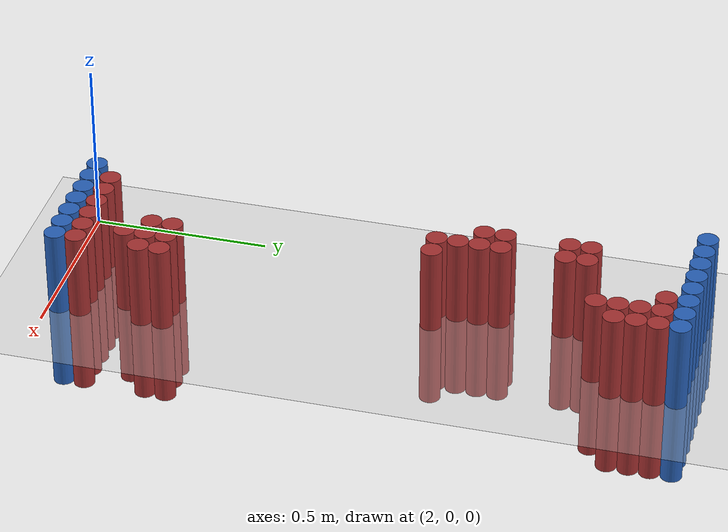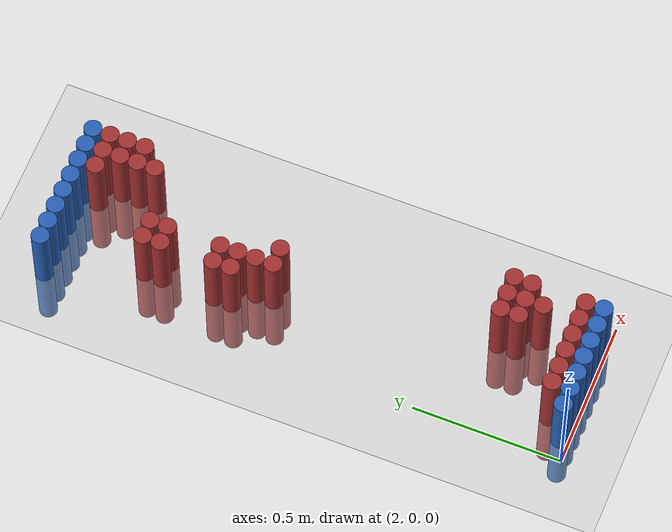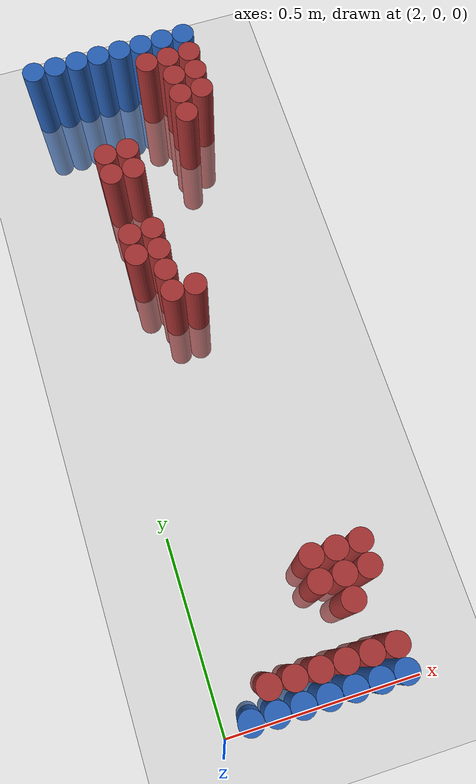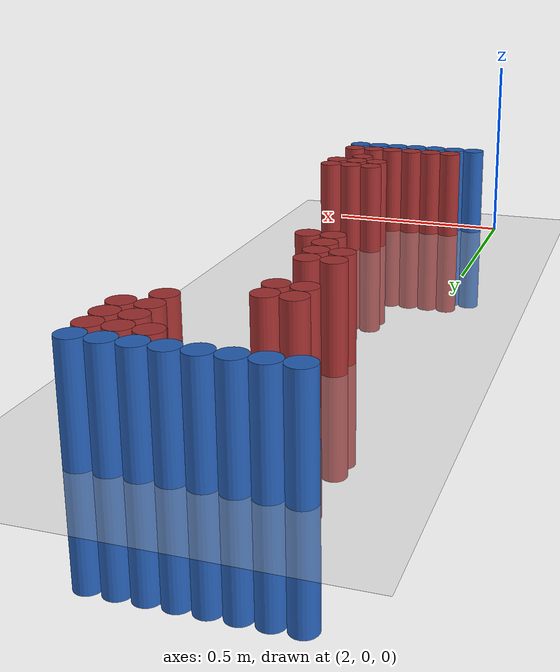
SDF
<sdf version="1.6">
 <world name="default">
  <model name="ground_plane">
   <static>1</static>
   <link name="link">
    <collision name="collision">
     <geometry><plane><normal>0 0 1</normal><size>100 100</size></plane></geometry>
     <surface><friction><ode><mu>100</mu><mu2>50</mu2></ode></friction></surface>
    </collision>
    <visual name="visual">
     <cast_shadows>0</cast_shadows>
     <geometry><plane><normal>0 0 1</normal><size>100 100</size></plane></geometry>
     <material>
      <script><uri>file://media/materials/scripts/gazebo.material</uri><name>Gazebo/Grey</name></script>
     </material>
    </visual>
   </link>
  </model>
  <model name="unit_cylinder_94">
   <static>1</static>
   <pose>2.010000 1.770000 0.000000 0.000000 0.000000 0.000000</pose>
   <link name="link">
    <inertial>
     <mass>1</mass>
     <inertia><ixx>0.145833</ixx><ixy>0</ixy><ixz>0</ixz><iyy>0.145833</iyy><iyz>0</iyz><izz>0.125</izz></inertia>
    </inertial>
    <collision name="collision">
     <geometry><cylinder><radius>0.030000</radius><length>0.5</length></cylinder></geometry>
    </collision>
    <visual name="visual">
     <geometry><cylinder><radius>0.030000</radius><length>0.5</length></cylinder></geometry>
     <material>
      <ambient>0.152000 0.379000 0.720000 1</ambient>
      <diffuse>0.152000 0.379000 0.720000 1</diffuse>
     </material>
     <material>
      <script><name>Gazebo/Grey</name><uri>file://media/materials/scripts/gazebo.material</uri></script>
     </material>
    </visual>
   </link>
  </model>
  <model name="unit_cylinder_95">
   <static>1</static>
   <pose>2.070000 1.770000 0.000000 0.000000 0.000000 0.000000</pose>
   <link name="link">
    <inertial>
     <mass>1</mass>
     <inertia><ixx>0.145833</ixx><ixy>0</ixy><ixz>0</ixz><iyy>0.145833</iyy><iyz>0</iyz><izz>0.125</izz></inertia>
    </inertial>
    <collision name="collision">
     <geometry><cylinder><radius>0.030000</radius><length>0.5</length></cylinder></geometry>
    </collision>
    <visual name="visual">
     <geometry><cylinder><radius>0.030000</radius><length>0.5</length></cylinder></geometry>
     <material>
      <ambient>0.152000 0.379000 0.720000 1</ambient>
      <diffuse>0.152000 0.379000 0.720000 1</diffuse>
     </material>
     <material>
      <script><name>Gazebo/Grey</name><uri>file://media/materials/scripts/gazebo.material</uri></script>
     </material>
    </visual>
   </link>
  </model>
  <model name="unit_cylinder_96">
   <static>1</static>
   <pose>2.130000 1.770000 0.000000 0.000000 0.000000 0.000000</pose>
   <link name="link">
    <inertial>
     <mass>1</mass>
     <inertia><ixx>0.145833</ixx><ixy>0</ixy><ixz>0</ixz><iyy>0.145833</iyy><iyz>0</iyz><izz>0.125</izz></inertia>
    </inertial>
    <collision name="collision">
     <geometry><cylinder><radius>0.030000</radius><length>0.5</length></cylinder></geometry>
    </collision>
    <visual name="visual">
     <geometry><cylinder><radius>0.030000</radius><length>0.5</length></cylinder></geometry>
     <material>
      <ambient>0.152000 0.379000 0.720000 1</ambient>
      <diffuse>0.152000 0.379000 0.720000 1</diffuse>
     </material>
     <material>
      <script><name>Gazebo/Grey</name><uri>file://media/materials/scripts/gazebo.material</uri></script>
     </material>
    </visual>
   </link>
  </model>
  <model name="unit_cylinder_97">
   <static>1</static>
   <pose>2.190000 1.770000 0.000000 0.000000 0.000000 0.000000</pose>
   <link name="link">
    <inertial>
     <mass>1</mass>
     <inertia><ixx>0.145833</ixx><ixy>0</ixy><ixz>0</ixz><iyy>0.145833</iyy><iyz>0</iyz><izz>0.125</izz></inertia>
    </inertial>
    <collision name="collision">
     <geometry><cylinder><radius>0.030000</radius><length>0.5</length></cylinder></geometry>
    </collision>
    <visual name="visual">
     <geometry><cylinder><radius>0.030000</radius><length>0.5</length></cylinder></geometry>
     <material>
      <ambient>0.152000 0.379000 0.720000 1</ambient>
      <diffuse>0.152000 0.379000 0.720000 1</diffuse>
     </material>
     <material>
      <script><name>Gazebo/Grey</name><uri>file://media/materials/scripts/gazebo.material</uri></script>
     </material>
    </visual>
   </link>
  </model>
  <model name="unit_cylinder_98">
   <static>1</static>
   <pose>2.250000 1.770000 0.000000 0.000000 0.000000 0.000000</pose>
   <link name="link">
    <inertial>
     <mass>1</mass>
     <inertia><ixx>0.145833</ixx><ixy>0</ixy><ixz>0</ixz><iyy>0.145833</iyy><iyz>0</iyz><izz>0.125</izz></inertia>
    </inertial>
    <collision name="collision">
     <geometry><cylinder><radius>0.030000</radius><length>0.5</length></cylinder></geometry>
    </collision>
    <visual name="visual">
     <geometry><cylinder><radius>0.030000</radius><length>0.5</length></cylinder></geometry>
     <material>
      <ambient>0.152000 0.379000 0.720000 1</ambient>
      <diffuse>0.152000 0.379000 0.720000 1</diffuse>
     </material>
     <material>
      <script><name>Gazebo/Grey</name><uri>file://media/materials/scripts/gazebo.material</uri></script>
     </material>
    </visual>
   </link>
  </model>
  <model name="unit_cylinder_99">
   <static>1</static>
   <pose>2.310000 1.770000 0.000000 0.000000 0.000000 0.000000</pose>
   <link name="link">
    <inertial>
     <mass>1</mass>
     <inertia><ixx>0.145833</ixx><ixy>0</ixy><ixz>0</ixz><iyy>0.145833</iyy><iyz>0</iyz><izz>0.125</izz></inertia>
    </inertial>
    <collision name="collision">
     <geometry><cylinder><radius>0.030000</radius><length>0.5</length></cylinder></geometry>
    </collision>
    <visual name="visual">
     <geometry><cylinder><radius>0.030000</radius><length>0.5</length></cylinder></geometry>
     <material>
      <ambient>0.152000 0.379000 0.720000 1</ambient>
      <diffuse>0.152000 0.379000 0.720000 1</diffuse>
     </material>
     <material>
      <script><name>Gazebo/Grey</name><uri>file://media/materials/scripts/gazebo.material</uri></script>
     </material>
    </visual>
   </link>
  </model>
  <model name="unit_cylinder_100">
   <static>1</static>
   <pose>2.370000 1.770000 0.000000 0.000000 0.000000 0.000000</pose>
   <link name="link">
    <inertial>
     <mass>1</mass>
     <inertia><ixx>0.145833</ixx><ixy>0</ixy><ixz>0</ixz><iyy>0.145833</iyy><iyz>0</iyz><izz>0.125</izz></inertia>
    </inertial>
    <collision name="collision">
     <geometry><cylinder><radius>0.030000</radius><length>0.5</length></cylinder></geometry>
    </collision>
    <visual name="visual">
     <geometry><cylinder><radius>0.030000</radius><length>0.5</length></cylinder></geometry>
     <material>
      <ambient>0.152000 0.379000 0.720000 1</ambient>
      <diffuse>0.152000 0.379000 0.720000 1</diffuse>
     </material>
     <material>
      <script><name>Gazebo/Grey</name><uri>file://media/materials/scripts/gazebo.material</uri></script>
     </material>
    </visual>
   </link>
  </model>
  <model name="unit_cylinder_101">
   <static>1</static>
   <pose>2.430000 1.770000 0.000000 0.000000 0.000000 0.000000</pose>
   <link name="link">
    <inertial>
     <mass>1</mass>
     <inertia><ixx>0.145833</ixx><ixy>0</ixy><ixz>0</ixz><iyy>0.145833</iyy><iyz>0</iyz><izz>0.125</izz></inertia>
    </inertial>
    <collision name="collision">
     <geometry><cylinder><radius>0.030000</radius><length>0.5</length></cylinder></geometry>
    </collision>
    <visual name="visual">
     <geometry><cylinder><radius>0.030000</radius><length>0.5</length></cylinder></geometry>
     <material>
      <ambient>0.152000 0.379000 0.720000 1</ambient>
      <diffuse>0.152000 0.379000 0.720000 1</diffuse>
     </material>
     <material>
      <script><name>Gazebo/Grey</name><uri>file://media/materials/scripts/gazebo.material</uri></script>
     </material>
    </visual>
   </link>
  </model>
  <model name="unit_cylinder_125">
   <static>1</static>
   <pose>2.310000 1.710000 0.000000 0.000000 0.000000 0.000000</pose>
   <link name="link">
    <inertial>
     <mass>1</mass>
     <inertia><ixx>0.145833</ixx><ixy>0</ixy><ixz>0</ixz><iyy>0.145833</iyy><iyz>0</iyz><izz>0.125</izz></inertia>
    </inertial>
    <collision name="collision">
     <geometry><cylinder><radius>0.030000</radius><length>0.5</length></cylinder></geometry>
    </collision>
    <visual name="visual">
     <geometry><cylinder><radius>0.030000</radius><length>0.5</length></cylinder></geometry>
     <material>
      <ambient>0.648000 0.192000 0.192000 1</ambient>
      <diffuse>0.648000 0.192000 0.192000 1</diffuse>
     </material>
     <material>
      <script><name>Gazebo/Grey</name><uri>file://media/materials/scripts/gazebo.material</uri></script>
     </material>
    </visual>
   </link>
  </model>
  <model name="unit_cylinder_126">
   <static>1</static>
   <pose>2.370000 1.710000 0.000000 0.000000 0.000000 0.000000</pose>
   <link name="link">
    <inertial>
     <mass>1</mass>
     <inertia><ixx>0.145833</ixx><ixy>0</ixy><ixz>0</ixz><iyy>0.145833</iyy><iyz>0</iyz><izz>0.125</izz></inertia>
    </inertial>
    <collision name="collision">
     <geometry><cylinder><radius>0.030000</radius><length>0.5</length></cylinder></geometry>
    </collision>
    <visual name="visual">
     <geometry><cylinder><radius>0.030000</radius><length>0.5</length></cylinder></geometry>
     <material>
      <ambient>0.648000 0.192000 0.192000 1</ambient>
      <diffuse>0.648000 0.192000 0.192000 1</diffuse>
     </material>
     <material>
      <script><name>Gazebo/Grey</name><uri>file://media/materials/scripts/gazebo.material</uri></script>
     </material>
    </visual>
   </link>
  </model>
  <model name="unit_cylinder_127">
   <static>1</static>
   <pose>2.430000 1.710000 0.000000 0.000000 0.000000 0.000000</pose>
   <link name="link">
    <inertial>
     <mass>1</mass>
     <inertia><ixx>0.145833</ixx><ixy>0</ixy><ixz>0</ixz><iyy>0.145833</iyy><iyz>0</iyz><izz>0.125</izz></inertia>
    </inertial>
    <collision name="collision">
     <geometry><cylinder><radius>0.030000</radius><length>0.5</length></cylinder></geometry>
    </collision>
    <visual name="visual">
     <geometry><cylinder><radius>0.030000</radius><length>0.5</length></cylinder></geometry>
     <material>
      <ambient>0.648000 0.192000 0.192000 1</ambient>
      <diffuse>0.648000 0.192000 0.192000 1</diffuse>
     </material>
     <material>
      <script><name>Gazebo/Grey</name><uri>file://media/materials/scripts/gazebo.material</uri></script>
     </material>
    </visual>
   </link>
  </model>
  <model name="unit_cylinder_139">
   <static>1</static>
   <pose>2.370000 1.650000 0.000000 0.000000 0.000000 0.000000</pose>
   <link name="link">
    <inertial>
     <mass>1</mass>
     <inertia><ixx>0.145833</ixx><ixy>0</ixy><ixz>0</ixz><iyy>0.145833</iyy><iyz>0</iyz><izz>0.125</izz></inertia>
    </inertial>
    <collision name="collision">
     <geometry><cylinder><radius>0.030000</radius><length>0.5</length></cylinder></geometry>
    </collision>
    <visual name="visual">
     <geometry><cylinder><radius>0.030000</radius><length>0.5</length></cylinder></geometry>
     <material>
      <ambient>0.648000 0.192000 0.192000 1</ambient>
      <diffuse>0.648000 0.192000 0.192000 1</diffuse>
     </material>
     <material>
      <script><name>Gazebo/Grey</name><uri>file://media/materials/scripts/gazebo.material</uri></script>
     </material>
    </visual>
   </link>
  </model>
  <model name="unit_cylinder_140">
   <static>1</static>
   <pose>2.430000 1.650000 0.000000 0.000000 0.000000 0.000000</pose>
   <link name="link">
    <inertial>
     <mass>1</mass>
     <inertia><ixx>0.145833</ixx><ixy>0</ixy><ixz>0</ixz><iyy>0.145833</iyy><iyz>0</iyz><izz>0.125</izz></inertia>
    </inertial>
    <collision name="collision">
     <geometry><cylinder><radius>0.030000</radius><length>0.5</length></cylinder></geometry>
    </collision>
    <visual name="visual">
     <geometry><cylinder><radius>0.030000</radius><length>0.5</length></cylinder></geometry>
     <material>
      <ambient>0.648000 0.192000 0.192000 1</ambient>
      <diffuse>0.648000 0.192000 0.192000 1</diffuse>
     </material>
     <material>
      <script><name>Gazebo/Grey</name><uri>file://media/materials/scripts/gazebo.material</uri></script>
     </material>
    </visual>
   </link>
  </model>
  <model name="unit_cylinder_144">
   <static>1</static>
   <pose>2.370000 1.590000 0.000000 0.000000 0.000000 0.000000</pose>
   <link name="link">
    <inertial>
     <mass>1</mass>
     <inertia><ixx>0.145833</ixx><ixy>0</ixy><ixz>0</ixz><iyy>0.145833</iyy><iyz>0</iyz><izz>0.125</izz></inertia>
    </inertial>
    <collision name="collision">
     <geometry><cylinder><radius>0.030000</radius><length>0.5</length></cylinder></geometry>
    </collision>
    <visual name="visual">
     <geometry><cylinder><radius>0.030000</radius><length>0.5</length></cylinder></geometry>
     <material>
      <ambient>0.648000 0.192000 0.192000 1</ambient>
      <diffuse>0.648000 0.192000 0.192000 1</diffuse>
     </material>
     <material>
      <script><name>Gazebo/Grey</name><uri>file://media/materials/scripts/gazebo.material</uri></script>
     </material>
    </visual>
   </link>
  </model>
  <model name="unit_cylinder_145">
   <static>1</static>
   <pose>2.430000 1.590000 0.000000 0.000000 0.000000 0.000000</pose>
   <link name="link">
    <inertial>
     <mass>1</mass>
     <inertia><ixx>0.145833</ixx><ixy>0</ixy><ixz>0</ixz><iyy>0.145833</iyy><iyz>0</iyz><izz>0.125</izz></inertia>
    </inertial>
    <collision name="collision">
     <geometry><cylinder><radius>0.030000</radius><length>0.5</length></cylinder></geometry>
    </collision>
    <visual name="visual">
     <geometry><cylinder><radius>0.030000</radius><length>0.5</length></cylinder></geometry>
     <material>
      <ambient>0.648000 0.192000 0.192000 1</ambient>
      <diffuse>0.648000 0.192000 0.192000 1</diffuse>
     </material>
     <material>
      <script><name>Gazebo/Grey</name><uri>file://media/materials/scripts/gazebo.material</uri></script>
     </material>
    </visual>
   </link>
  </model>
  <model name="unit_cylinder_147">
   <static>1</static>
   <pose>2.370000 1.530000 0.000000 0.000000 0.000000 0.000000</pose>
   <link name="link">
    <inertial>
     <mass>1</mass>
     <inertia><ixx>0.145833</ixx><ixy>0</ixy><ixz>0</ixz><iyy>0.145833</iyy><iyz>0</iyz><izz>0.125</izz></inertia>
    </inertial>
    <collision name="collision">
     <geometry><cylinder><radius>0.030000</radius><length>0.5</length></cylinder></geometry>
    </collision>
    <visual name="visual">
     <geometry><cylinder><radius>0.030000</radius><length>0.5</length></cylinder></geometry>
     <material>
      <ambient>0.648000 0.192000 0.192000 1</ambient>
      <diffuse>0.648000 0.192000 0.192000 1</diffuse>
     </material>
     <material>
      <script><name>Gazebo/Grey</name><uri>file://media/materials/scripts/gazebo.material</uri></script>
     </material>
    </visual>
   </link>
  </model>
  <model name="unit_cylinder_150">
   <static>1</static>
   <pose>2.130000 1.470000 0.000000 0.000000 0.000000 0.000000</pose>
   <link name="link">
    <inertial>
     <mass>1</mass>
     <inertia><ixx>0.145833</ixx><ixy>0</ixy><ixz>0</ixz><iyy>0.145833</iyy><iyz>0</iyz><izz>0.125</izz></inertia>
    </inertial>
    <collision name="collision">
     <geometry><cylinder><radius>0.030000</radius><length>0.5</length></cylinder></geometry>
    </collision>
    <visual name="visual">
     <geometry><cylinder><radius>0.030000</radius><length>0.5</length></cylinder></geometry>
     <material>
      <ambient>0.648000 0.192000 0.192000 1</ambient>
      <diffuse>0.648000 0.192000 0.192000 1</diffuse>
     </material>
     <material>
      <script><name>Gazebo/Grey</name><uri>file://media/materials/scripts/gazebo.material</uri></script>
     </material>
    </visual>
   </link>
  </model>
  <model name="unit_cylinder_151">
   <static>1</static>
   <pose>2.190000 1.470000 0.000000 0.000000 0.000000 0.000000</pose>
   <link name="link">
    <inertial>
     <mass>1</mass>
     <inertia><ixx>0.145833</ixx><ixy>0</ixy><ixz>0</ixz><iyy>0.145833</iyy><iyz>0</iyz><izz>0.125</izz></inertia>
    </inertial>
    <collision name="collision">
     <geometry><cylinder><radius>0.030000</radius><length>0.5</length></cylinder></geometry>
    </collision>
    <visual name="visual">
     <geometry><cylinder><radius>0.030000</radius><length>0.5</length></cylinder></geometry>
     <material>
      <ambient>0.648000 0.192000 0.192000 1</ambient>
      <diffuse>0.648000 0.192000 0.192000 1</diffuse>
     </material>
     <material>
      <script><name>Gazebo/Grey</name><uri>file://media/materials/scripts/gazebo.material</uri></script>
     </material>
    </visual>
   </link>
  </model>
  <model name="unit_cylinder_156">
   <static>1</static>
   <pose>2.130000 1.410000 0.000000 0.000000 0.000000 0.000000</pose>
   <link name="link">
    <inertial>
     <mass>1</mass>
     <inertia><ixx>0.145833</ixx><ixy>0</ixy><ixz>0</ixz><iyy>0.145833</iyy><iyz>0</iyz><izz>0.125</izz></inertia>
    </inertial>
    <collision name="collision">
     <geometry><cylinder><radius>0.030000</radius><length>0.5</length></cylinder></geometry>
    </collision>
    <visual name="visual">
     <geometry><cylinder><radius>0.030000</radius><length>0.5</length></cylinder></geometry>
     <material>
      <ambient>0.648000 0.192000 0.192000 1</ambient>
      <diffuse>0.648000 0.192000 0.192000 1</diffuse>
     </material>
     <material>
      <script><name>Gazebo/Grey</name><uri>file://media/materials/scripts/gazebo.material</uri></script>
     </material>
    </visual>
   </link>
  </model>
  <model name="unit_cylinder_157">
   <static>1</static>
   <pose>2.190000 1.410000 0.000000 0.000000 0.000000 0.000000</pose>
   <link name="link">
    <inertial>
     <mass>1</mass>
     <inertia><ixx>0.145833</ixx><ixy>0</ixy><ixz>0</ixz><iyy>0.145833</iyy><iyz>0</iyz><izz>0.125</izz></inertia>
    </inertial>
    <collision name="collision">
     <geometry><cylinder><radius>0.030000</radius><length>0.5</length></cylinder></geometry>
    </collision>
    <visual name="visual">
     <geometry><cylinder><radius>0.030000</radius><length>0.5</length></cylinder></geometry>
     <material>
      <ambient>0.648000 0.192000 0.192000 1</ambient>
      <diffuse>0.648000 0.192000 0.192000 1</diffuse>
     </material>
     <material>
      <script><name>Gazebo/Grey</name><uri>file://media/materials/scripts/gazebo.material</uri></script>
     </material>
    </visual>
   </link>
  </model>
  <model name="unit_cylinder_173">
   <static>1</static>
   <pose>2.130000 1.230000 0.000000 0.000000 0.000000 0.000000</pose>
   <link name="link">
    <inertial>
     <mass>1</mass>
     <inertia><ixx>0.145833</ixx><ixy>0</ixy><ixz>0</ixz><iyy>0.145833</iyy><iyz>0</iyz><izz>0.125</izz></inertia>
    </inertial>
    <collision name="collision">
     <geometry><cylinder><radius>0.030000</radius><length>0.5</length></cylinder></geometry>
    </collision>
    <visual name="visual">
     <geometry><cylinder><radius>0.030000</radius><length>0.5</length></cylinder></geometry>
     <material>
      <ambient>0.648000 0.192000 0.192000 1</ambient>
      <diffuse>0.648000 0.192000 0.192000 1</diffuse>
     </material>
     <material>
      <script><name>Gazebo/Grey</name><uri>file://media/materials/scripts/gazebo.material</uri></script>
     </material>
    </visual>
   </link>
  </model>
  <model name="unit_cylinder_174">
   <static>1</static>
   <pose>2.190000 1.230000 0.000000 0.000000 0.000000 0.000000</pose>
   <link name="link">
    <inertial>
     <mass>1</mass>
     <inertia><ixx>0.145833</ixx><ixy>0</ixy><ixz>0</ixz><iyy>0.145833</iyy><iyz>0</iyz><izz>0.125</izz></inertia>
    </inertial>
    <collision name="collision">
     <geometry><cylinder><radius>0.030000</radius><length>0.5</length></cylinder></geometry>
    </collision>
    <visual name="visual">
     <geometry><cylinder><radius>0.030000</radius><length>0.5</length></cylinder></geometry>
     <material>
      <ambient>0.648000 0.192000 0.192000 1</ambient>
      <diffuse>0.648000 0.192000 0.192000 1</diffuse>
     </material>
     <material>
      <script><name>Gazebo/Grey</name><uri>file://media/materials/scripts/gazebo.material</uri></script>
     </material>
    </visual>
   </link>
  </model>
  <model name="unit_cylinder_177">
   <static>1</static>
   <pose>2.130000 1.170000 0.000000 0.000000 0.000000 0.000000</pose>
   <link name="link">
    <inertial>
     <mass>1</mass>
     <inertia><ixx>0.145833</ixx><ixy>0</ixy><ixz>0</ixz><iyy>0.145833</iyy><iyz>0</iyz><izz>0.125</izz></inertia>
    </inertial>
    <collision name="collision">
     <geometry><cylinder><radius>0.030000</radius><length>0.5</length></cylinder></geometry>
    </collision>
    <visual name="visual">
     <geometry><cylinder><radius>0.030000</radius><length>0.5</length></cylinder></geometry>
     <material>
      <ambient>0.648000 0.192000 0.192000 1</ambient>
      <diffuse>0.648000 0.192000 0.192000 1</diffuse>
     </material>
     <material>
      <script><name>Gazebo/Grey</name><uri>file://media/materials/scripts/gazebo.material</uri></script>
     </material>
    </visual>
   </link>
  </model>
  <model name="unit_cylinder_178">
   <static>1</static>
   <pose>2.190000 1.170000 0.000000 0.000000 0.000000 0.000000</pose>
   <link name="link">
    <inertial>
     <mass>1</mass>
     <inertia><ixx>0.145833</ixx><ixy>0</ixy><ixz>0</ixz><iyy>0.145833</iyy><iyz>0</iyz><izz>0.125</izz></inertia>
    </inertial>
    <collision name="collision">
     <geometry><cylinder><radius>0.030000</radius><length>0.5</length></cylinder></geometry>
    </collision>
    <visual name="visual">
     <geometry><cylinder><radius>0.030000</radius><length>0.5</length></cylinder></geometry>
     <material>
      <ambient>0.648000 0.192000 0.192000 1</ambient>
      <diffuse>0.648000 0.192000 0.192000 1</diffuse>
     </material>
     <material>
      <script><name>Gazebo/Grey</name><uri>file://media/materials/scripts/gazebo.material</uri></script>
     </material>
    </visual>
   </link>
  </model>
  <model name="unit_cylinder_182">
   <static>1</static>
   <pose>2.190000 1.110000 0.000000 0.000000 0.000000 0.000000</pose>
   <link name="link">
    <inertial>
     <mass>1</mass>
     <inertia><ixx>0.145833</ixx><ixy>0</ixy><ixz>0</ixz><iyy>0.145833</iyy><iyz>0</iyz><izz>0.125</izz></inertia>
    </inertial>
    <collision name="collision">
     <geometry><cylinder><radius>0.030000</radius><length>0.5</length></cylinder></geometry>
    </collision>
    <visual name="visual">
     <geometry><cylinder><radius>0.030000</radius><length>0.5</length></cylinder></geometry>
     <material>
      <ambient>0.648000 0.192000 0.192000 1</ambient>
      <diffuse>0.648000 0.192000 0.192000 1</diffuse>
     </material>
     <material>
      <script><name>Gazebo/Grey</name><uri>file://media/materials/scripts/gazebo.material</uri></script>
     </material>
    </visual>
   </link>
  </model>
  <model name="unit_cylinder_185">
   <static>1</static>
   <pose>2.190000 1.050000 0.000000 0.000000 0.000000 0.000000</pose>
   <link name="link">
    <inertial>
     <mass>1</mass>
     <inertia><ixx>0.145833</ixx><ixy>0</ixy><ixz>0</ixz><iyy>0.145833</iyy><iyz>0</iyz><izz>0.125</izz></inertia>
    </inertial>
    <collision name="collision">
     <geometry><cylinder><radius>0.030000</radius><length>0.5</length></cylinder></geometry>
    </collision>
    <visual name="visual">
     <geometry><cylinder><radius>0.030000</radius><length>0.5</length></cylinder></geometry>
     <material>
      <ambient>0.648000 0.192000 0.192000 1</ambient>
      <diffuse>0.648000 0.192000 0.192000 1</diffuse>
     </material>
     <material>
      <script><name>Gazebo/Grey</name><uri>file://media/materials/scripts/gazebo.material</uri></script>
     </material>
    </visual>
   </link>
  </model>
  <model name="unit_cylinder_186">
   <static>1</static>
   <pose>2.250000 1.050000 0.000000 0.000000 0.000000 0.000000</pose>
   <link name="link">
    <inertial>
     <mass>1</mass>
     <inertia><ixx>0.145833</ixx><ixy>0</ixy><ixz>0</ixz><iyy>0.145833</iyy><iyz>0</iyz><izz>0.125</izz></inertia>
    </inertial>
    <collision name="collision">
     <geometry><cylinder><radius>0.030000</radius><length>0.5</length></cylinder></geometry>
    </collision>
    <visual name="visual">
     <geometry><cylinder><radius>0.030000</radius><length>0.5</length></cylinder></geometry>
     <material>
      <ambient>0.648000 0.192000 0.192000 1</ambient>
      <diffuse>0.648000 0.192000 0.192000 1</diffuse>
     </material>
     <material>
      <script><name>Gazebo/Grey</name><uri>file://media/materials/scripts/gazebo.material</uri></script>
     </material>
    </visual>
   </link>
  </model>
  <model name="unit_cylinder_214">
   <static>1</static>
   <pose>2.310000 0.330000 0.000000 0.000000 0.000000 0.000000</pose>
   <link name="link">
    <inertial>
     <mass>1</mass>
     <inertia><ixx>0.145833</ixx><ixy>0</ixy><ixz>0</ixz><iyy>0.145833</iyy><iyz>0</iyz><izz>0.125</izz></inertia>
    </inertial>
    <collision name="collision">
     <geometry><cylinder><radius>0.030000</radius><length>0.5</length></cylinder></geometry>
    </collision>
    <visual name="visual">
     <geometry><cylinder><radius>0.030000</radius><length>0.5</length></cylinder></geometry>
     <material>
      <ambient>0.648000 0.192000 0.192000 1</ambient>
      <diffuse>0.648000 0.192000 0.192000 1</diffuse>
     </material>
     <material>
      <script><name>Gazebo/Grey</name><uri>file://media/materials/scripts/gazebo.material</uri></script>
     </material>
    </visual>
   </link>
  </model>
  <model name="unit_cylinder_215">
   <static>1</static>
   <pose>2.370000 0.330000 0.000000 0.000000 0.000000 0.000000</pose>
   <link name="link">
    <inertial>
     <mass>1</mass>
     <inertia><ixx>0.145833</ixx><ixy>0</ixy><ixz>0</ixz><iyy>0.145833</iyy><iyz>0</iyz><izz>0.125</izz></inertia>
    </inertial>
    <collision name="collision">
     <geometry><cylinder><radius>0.030000</radius><length>0.5</length></cylinder></geometry>
    </collision>
    <visual name="visual">
     <geometry><cylinder><radius>0.030000</radius><length>0.5</length></cylinder></geometry>
     <material>
      <ambient>0.648000 0.192000 0.192000 1</ambient>
      <diffuse>0.648000 0.192000 0.192000 1</diffuse>
     </material>
     <material>
      <script><name>Gazebo/Grey</name><uri>file://media/materials/scripts/gazebo.material</uri></script>
     </material>
    </visual>
   </link>
  </model>
  <model name="unit_cylinder_216">
   <static>1</static>
   <pose>2.430000 0.330000 0.000000 0.000000 0.000000 0.000000</pose>
   <link name="link">
    <inertial>
     <mass>1</mass>
     <inertia><ixx>0.145833</ixx><ixy>0</ixy><ixz>0</ixz><iyy>0.145833</iyy><iyz>0</iyz><izz>0.125</izz></inertia>
    </inertial>
    <collision name="collision">
     <geometry><cylinder><radius>0.030000</radius><length>0.5</length></cylinder></geometry>
    </collision>
    <visual name="visual">
     <geometry><cylinder><radius>0.030000</radius><length>0.5</length></cylinder></geometry>
     <material>
      <ambient>0.648000 0.192000 0.192000 1</ambient>
      <diffuse>0.648000 0.192000 0.192000 1</diffuse>
     </material>
     <material>
      <script><name>Gazebo/Grey</name><uri>file://media/materials/scripts/gazebo.material</uri></script>
     </material>
    </visual>
   </link>
  </model>
  <model name="unit_cylinder_218">
   <static>1</static>
   <pose>2.310000 0.270000 0.000000 0.000000 0.000000 0.000000</pose>
   <link name="link">
    <inertial>
     <mass>1</mass>
     <inertia><ixx>0.145833</ixx><ixy>0</ixy><ixz>0</ixz><iyy>0.145833</iyy><iyz>0</iyz><izz>0.125</izz></inertia>
    </inertial>
    <collision name="collision">
     <geometry><cylinder><radius>0.030000</radius><length>0.5</length></cylinder></geometry>
    </collision>
    <visual name="visual">
     <geometry><cylinder><radius>0.030000</radius><length>0.5</length></cylinder></geometry>
     <material>
      <ambient>0.648000 0.192000 0.192000 1</ambient>
      <diffuse>0.648000 0.192000 0.192000 1</diffuse>
     </material>
     <material>
      <script><name>Gazebo/Grey</name><uri>file://media/materials/scripts/gazebo.material</uri></script>
     </material>
    </visual>
   </link>
  </model>
  <model name="unit_cylinder_219">
   <static>1</static>
   <pose>2.370000 0.270000 0.000000 0.000000 0.000000 0.000000</pose>
   <link name="link">
    <inertial>
     <mass>1</mass>
     <inertia><ixx>0.145833</ixx><ixy>0</ixy><ixz>0</ixz><iyy>0.145833</iyy><iyz>0</iyz><izz>0.125</izz></inertia>
    </inertial>
    <collision name="collision">
     <geometry><cylinder><radius>0.030000</radius><length>0.5</length></cylinder></geometry>
    </collision>
    <visual name="visual">
     <geometry><cylinder><radius>0.030000</radius><length>0.5</length></cylinder></geometry>
     <material>
      <ambient>0.648000 0.192000 0.192000 1</ambient>
      <diffuse>0.648000 0.192000 0.192000 1</diffuse>
     </material>
     <material>
      <script><name>Gazebo/Grey</name><uri>file://media/materials/scripts/gazebo.material</uri></script>
     </material>
    </visual>
   </link>
  </model>
  <model name="unit_cylinder_220">
   <static>1</static>
   <pose>2.430000 0.270000 0.000000 0.000000 0.000000 0.000000</pose>
   <link name="link">
    <inertial>
     <mass>1</mass>
     <inertia><ixx>0.145833</ixx><ixy>0</ixy><ixz>0</ixz><iyy>0.145833</iyy><iyz>0</iyz><izz>0.125</izz></inertia>
    </inertial>
    <collision name="collision">
     <geometry><cylinder><radius>0.030000</radius><length>0.5</length></cylinder></geometry>
    </collision>
    <visual name="visual">
     <geometry><cylinder><radius>0.030000</radius><length>0.5</length></cylinder></geometry>
     <material>
      <ambient>0.648000 0.192000 0.192000 1</ambient>
      <diffuse>0.648000 0.192000 0.192000 1</diffuse>
     </material>
     <material>
      <script><name>Gazebo/Grey</name><uri>file://media/materials/scripts/gazebo.material</uri></script>
     </material>
    </visual>
   </link>
  </model>
  <model name="unit_cylinder_223">
   <static>1</static>
   <pose>2.370000 0.210000 0.000000 0.000000 0.000000 0.000000</pose>
   <link name="link">
    <inertial>
     <mass>1</mass>
     <inertia><ixx>0.145833</ixx><ixy>0</ixy><ixz>0</ixz><iyy>0.145833</iyy><iyz>0</iyz><izz>0.125</izz></inertia>
    </inertial>
    <collision name="collision">
     <geometry><cylinder><radius>0.030000</radius><length>0.5</length></cylinder></geometry>
    </collision>
    <visual name="visual">
     <geometry><cylinder><radius>0.030000</radius><length>0.5</length></cylinder></geometry>
     <material>
      <ambient>0.648000 0.192000 0.192000 1</ambient>
      <diffuse>0.648000 0.192000 0.192000 1</diffuse>
     </material>
     <material>
      <script><name>Gazebo/Grey</name><uri>file://media/materials/scripts/gazebo.material</uri></script>
     </material>
    </visual>
   </link>
  </model>
  <model name="unit_cylinder_229">
   <static>1</static>
   <pose>2.130000 0.090000 0.000000 0.000000 0.000000 0.000000</pose>
   <link name="link">
    <inertial>
     <mass>1</mass>
     <inertia><ixx>0.145833</ixx><ixy>0</ixy><ixz>0</ixz><iyy>0.145833</iyy><iyz>0</iyz><izz>0.125</izz></inertia>
    </inertial>
    <collision name="collision">
     <geometry><cylinder><radius>0.030000</radius><length>0.5</length></cylinder></geometry>
    </collision>
    <visual name="visual">
     <geometry><cylinder><radius>0.030000</radius><length>0.5</length></cylinder></geometry>
     <material>
      <ambient>0.648000 0.192000 0.192000 1</ambient>
      <diffuse>0.648000 0.192000 0.192000 1</diffuse>
     </material>
     <material>
      <script><name>Gazebo/Grey</name><uri>file://media/materials/scripts/gazebo.material</uri></script>
     </material>
    </visual>
   </link>
  </model>
  <model name="unit_cylinder_230">
   <static>1</static>
   <pose>2.190000 0.090000 0.000000 0.000000 0.000000 0.000000</pose>
   <link name="link">
    <inertial>
     <mass>1</mass>
     <inertia><ixx>0.145833</ixx><ixy>0</ixy><ixz>0</ixz><iyy>0.145833</iyy><iyz>0</iyz><izz>0.125</izz></inertia>
    </inertial>
    <collision name="collision">
     <geometry><cylinder><radius>0.030000</radius><length>0.5</length></cylinder></geometry>
    </collision>
    <visual name="visual">
     <geometry><cylinder><radius>0.030000</radius><length>0.5</length></cylinder></geometry>
     <material>
      <ambient>0.648000 0.192000 0.192000 1</ambient>
      <diffuse>0.648000 0.192000 0.192000 1</diffuse>
     </material>
     <material>
      <script><name>Gazebo/Grey</name><uri>file://media/materials/scripts/gazebo.material</uri></script>
     </material>
    </visual>
   </link>
  </model>
  <model name="unit_cylinder_231">
   <static>1</static>
   <pose>2.250000 0.090000 0.000000 0.000000 0.000000 0.000000</pose>
   <link name="link">
    <inertial>
     <mass>1</mass>
     <inertia><ixx>0.145833</ixx><ixy>0</ixy><ixz>0</ixz><iyy>0.145833</iyy><iyz>0</iyz><izz>0.125</izz></inertia>
    </inertial>
    <collision name="collision">
     <geometry><cylinder><radius>0.030000</radius><length>0.5</length></cylinder></geometry>
    </collision>
    <visual name="visual">
     <geometry><cylinder><radius>0.030000</radius><length>0.5</length></cylinder></geometry>
     <material>
      <ambient>0.648000 0.192000 0.192000 1</ambient>
      <diffuse>0.648000 0.192000 0.192000 1</diffuse>
     </material>
     <material>
      <script><name>Gazebo/Grey</name><uri>file://media/materials/scripts/gazebo.material</uri></script>
     </material>
    </visual>
   </link>
  </model>
  <model name="unit_cylinder_232">
   <static>1</static>
   <pose>2.310000 0.090000 0.000000 0.000000 0.000000 0.000000</pose>
   <link name="link">
    <inertial>
     <mass>1</mass>
     <inertia><ixx>0.145833</ixx><ixy>0</ixy><ixz>0</ixz><iyy>0.145833</iyy><iyz>0</iyz><izz>0.125</izz></inertia>
    </inertial>
    <collision name="collision">
     <geometry><cylinder><radius>0.030000</radius><length>0.5</length></cylinder></geometry>
    </collision>
    <visual name="visual">
     <geometry><cylinder><radius>0.030000</radius><length>0.5</length></cylinder></geometry>
     <material>
      <ambient>0.648000 0.192000 0.192000 1</ambient>
      <diffuse>0.648000 0.192000 0.192000 1</diffuse>
     </material>
     <material>
      <script><name>Gazebo/Grey</name><uri>file://media/materials/scripts/gazebo.material</uri></script>
     </material>
    </visual>
   </link>
  </model>
  <model name="unit_cylinder_233">
   <static>1</static>
   <pose>2.370000 0.090000 0.000000 0.000000 0.000000 0.000000</pose>
   <link name="link">
    <inertial>
     <mass>1</mass>
     <inertia><ixx>0.145833</ixx><ixy>0</ixy><ixz>0</ixz><iyy>0.145833</iyy><iyz>0</iyz><izz>0.125</izz></inertia>
    </inertial>
    <collision name="collision">
     <geometry><cylinder><radius>0.030000</radius><length>0.5</length></cylinder></geometry>
    </collision>
    <visual name="visual">
     <geometry><cylinder><radius>0.030000</radius><length>0.5</length></cylinder></geometry>
     <material>
      <ambient>0.648000 0.192000 0.192000 1</ambient>
      <diffuse>0.648000 0.192000 0.192000 1</diffuse>
     </material>
     <material>
      <script><name>Gazebo/Grey</name><uri>file://media/materials/scripts/gazebo.material</uri></script>
     </material>
    </visual>
   </link>
  </model>
  <model name="unit_cylinder_234">
   <static>1</static>
   <pose>2.430000 0.090000 0.000000 0.000000 0.000000 0.000000</pose>
   <link name="link">
    <inertial>
     <mass>1</mass>
     <inertia><ixx>0.145833</ixx><ixy>0</ixy><ixz>0</ixz><iyy>0.145833</iyy><iyz>0</iyz><izz>0.125</izz></inertia>
    </inertial>
    <collision name="collision">
     <geometry><cylinder><radius>0.030000</radius><length>0.5</length></cylinder></geometry>
    </collision>
    <visual name="visual">
     <geometry><cylinder><radius>0.030000</radius><length>0.5</length></cylinder></geometry>
     <material>
      <ambient>0.648000 0.192000 0.192000 1</ambient>
      <diffuse>0.648000 0.192000 0.192000 1</diffuse>
     </material>
     <material>
      <script><name>Gazebo/Grey</name><uri>file://media/materials/scripts/gazebo.material</uri></script>
     </material>
    </visual>
   </link>
  </model>
  <model name="unit_cylinder_251">
   <static>1</static>
   <pose>2.070000 0.030000 0.000000 0.000000 0.000000 0.000000</pose>
   <link name="link">
    <inertial>
     <mass>1</mass>
     <inertia><ixx>0.145833</ixx><ixy>0</ixy><ixz>0</ixz><iyy>0.145833</iyy><iyz>0</iyz><izz>0.125</izz></inertia>
    </inertial>
    <collision name="collision">
     <geometry><cylinder><radius>0.030000</radius><length>0.5</length></cylinder></geometry>
    </collision>
    <visual name="visual">
     <geometry><cylinder><radius>0.030000</radius><length>0.5</length></cylinder></geometry>
     <material>
      <ambient>0.152000 0.379000 0.720000 1</ambient>
      <diffuse>0.152000 0.379000 0.720000 1</diffuse>
     </material>
     <material>
      <script><name>Gazebo/Grey</name><uri>file://media/materials/scripts/gazebo.material</uri></script>
     </material>
    </visual>
   </link>
  </model>
  <model name="unit_cylinder_252">
   <static>1</static>
   <pose>2.130000 0.030000 0.000000 0.000000 0.000000 0.000000</pose>
   <link name="link">
    <inertial>
     <mass>1</mass>
     <inertia><ixx>0.145833</ixx><ixy>0</ixy><ixz>0</ixz><iyy>0.145833</iyy><iyz>0</iyz><izz>0.125</izz></inertia>
    </inertial>
    <collision name="collision">
     <geometry><cylinder><radius>0.030000</radius><length>0.5</length></cylinder></geometry>
    </collision>
    <visual name="visual">
     <geometry><cylinder><radius>0.030000</radius><length>0.5</length></cylinder></geometry>
     <material>
      <ambient>0.152000 0.379000 0.720000 1</ambient>
      <diffuse>0.152000 0.379000 0.720000 1</diffuse>
     </material>
     <material>
      <script><name>Gazebo/Grey</name><uri>file://media/materials/scripts/gazebo.material</uri></script>
     </material>
    </visual>
   </link>
  </model>
  <model name="unit_cylinder_253">
   <static>1</static>
   <pose>2.190000 0.030000 0.000000 0.000000 0.000000 0.000000</pose>
   <link name="link">
    <inertial>
     <mass>1</mass>
     <inertia><ixx>0.145833</ixx><ixy>0</ixy><ixz>0</ixz><iyy>0.145833</iyy><iyz>0</iyz><izz>0.125</izz></inertia>
    </inertial>
    <collision name="collision">
     <geometry><cylinder><radius>0.030000</radius><length>0.5</length></cylinder></geometry>
    </collision>
    <visual name="visual">
     <geometry><cylinder><radius>0.030000</radius><length>0.5</length></cylinder></geometry>
     <material>
      <ambient>0.152000 0.379000 0.720000 1</ambient>
      <diffuse>0.152000 0.379000 0.720000 1</diffuse>
     </material>
     <material>
      <script><name>Gazebo/Grey</name><uri>file://media/materials/scripts/gazebo.material</uri></script>
     </material>
    </visual>
   </link>
  </model>
  <model name="unit_cylinder_254">
   <static>1</static>
   <pose>2.250000 0.030000 0.000000 0.000000 0.000000 0.000000</pose>
   <link name="link">
    <inertial>
     <mass>1</mass>
     <inertia><ixx>0.145833</ixx><ixy>0</ixy><ixz>0</ixz><iyy>0.145833</iyy><iyz>0</iyz><izz>0.125</izz></inertia>
    </inertial>
    <collision name="collision">
     <geometry><cylinder><radius>0.030000</radius><length>0.5</length></cylinder></geometry>
    </collision>
    <visual name="visual">
     <geometry><cylinder><radius>0.030000</radius><length>0.5</length></cylinder></geometry>
     <material>
      <ambient>0.152000 0.379000 0.720000 1</ambient>
      <diffuse>0.152000 0.379000 0.720000 1</diffuse>
     </material>
     <material>
      <script><name>Gazebo/Grey</name><uri>file://media/materials/scripts/gazebo.material</uri></script>
     </material>
    </visual>
   </link>
  </model>
  <model name="unit_cylinder_255">
   <static>1</static>
   <pose>2.310000 0.030000 0.000000 0.000000 0.000000 0.000000</pose>
   <link name="link">
    <inertial>
     <mass>1</mass>
     <inertia><ixx>0.145833</ixx><ixy>0</ixy><ixz>0</ixz><iyy>0.145833</iyy><iyz>0</iyz><izz>0.125</izz></inertia>
    </inertial>
    <collision name="collision">
     <geometry><cylinder><radius>0.030000</radius><length>0.5</length></cylinder></geometry>
    </collision>
    <visual name="visual">
     <geometry><cylinder><radius>0.030000</radius><length>0.5</length></cylinder></geometry>
     <material>
      <ambient>0.152000 0.379000 0.720000 1</ambient>
      <diffuse>0.152000 0.379000 0.720000 1</diffuse>
     </material>
     <material>
      <script><name>Gazebo/Grey</name><uri>file://media/materials/scripts/gazebo.material</uri></script>
     </material>
    </visual>
   </link>
  </model>
  <model name="unit_cylinder_256">
   <static>1</static>
   <pose>2.370000 0.030000 0.000000 0.000000 0.000000 0.000000</pose>
   <link name="link">
    <inertial>
     <mass>1</mass>
     <inertia><ixx>0.145833</ixx><ixy>0</ixy><ixz>0</ixz><iyy>0.145833</iyy><iyz>0</iyz><izz>0.125</izz></inertia>
    </inertial>
    <collision name="collision">
     <geometry><cylinder><radius>0.030000</radius><length>0.5</length></cylinder></geometry>
    </collision>
    <visual name="visual">
     <geometry><cylinder><radius>0.030000</radius><length>0.5</length></cylinder></geometry>
     <material>
      <ambient>0.152000 0.379000 0.720000 1</ambient>
      <diffuse>0.152000 0.379000 0.720000 1</diffuse>
     </material>
     <material>
      <script><name>Gazebo/Grey</name><uri>file://media/materials/scripts/gazebo.material</uri></script>
     </material>
    </visual>
   </link>
  </model>
  <model name="unit_cylinder_257">
   <static>1</static>
   <pose>2.430000 0.030000 0.000000 0.000000 0.000000 0.000000</pose>
   <link name="link">
    <inertial>
     <mass>1</mass>
     <inertia><ixx>0.145833</ixx><ixy>0</ixy><ixz>0</ixz><iyy>0.145833</iyy><iyz>0</iyz><izz>0.125</izz></inertia>
    </inertial>
    <collision name="collision">
     <geometry><cylinder><radius>0.030000</radius><length>0.5</length></cylinder></geometry>
    </collision>
    <visual name="visual">
     <geometry><cylinder><radius>0.030000</radius><length>0.5</length></cylinder></geometry>
     <material>
      <ambient>0.152000 0.379000 0.720000 1</ambient>
      <diffuse>0.152000 0.379000 0.720000 1</diffuse>
     </material>
     <material>
      <script><name>Gazebo/Grey</name><uri>file://media/materials/scripts/gazebo.material</uri></script>
     </material>
    </visual>
   </link>
  </model>
 </world>
</sdf>
